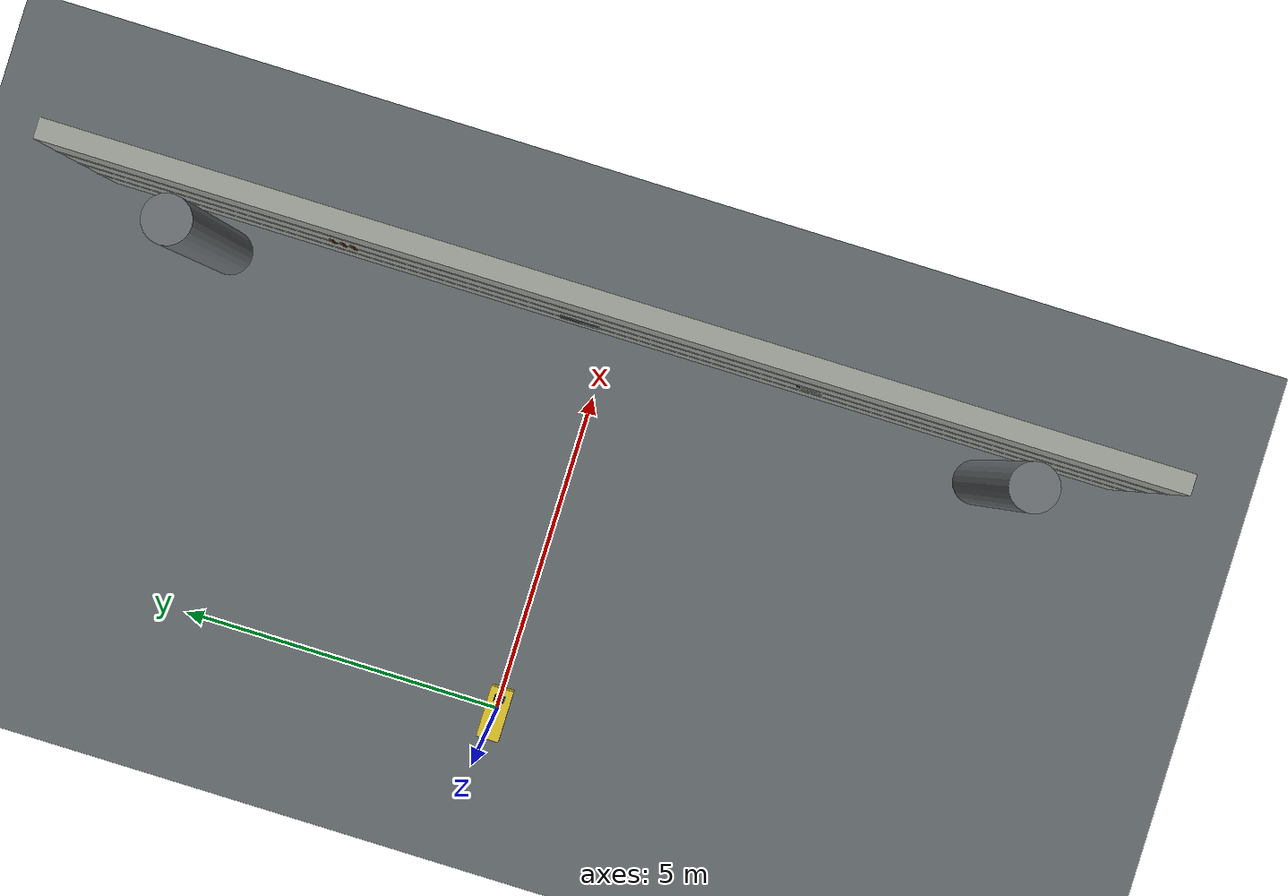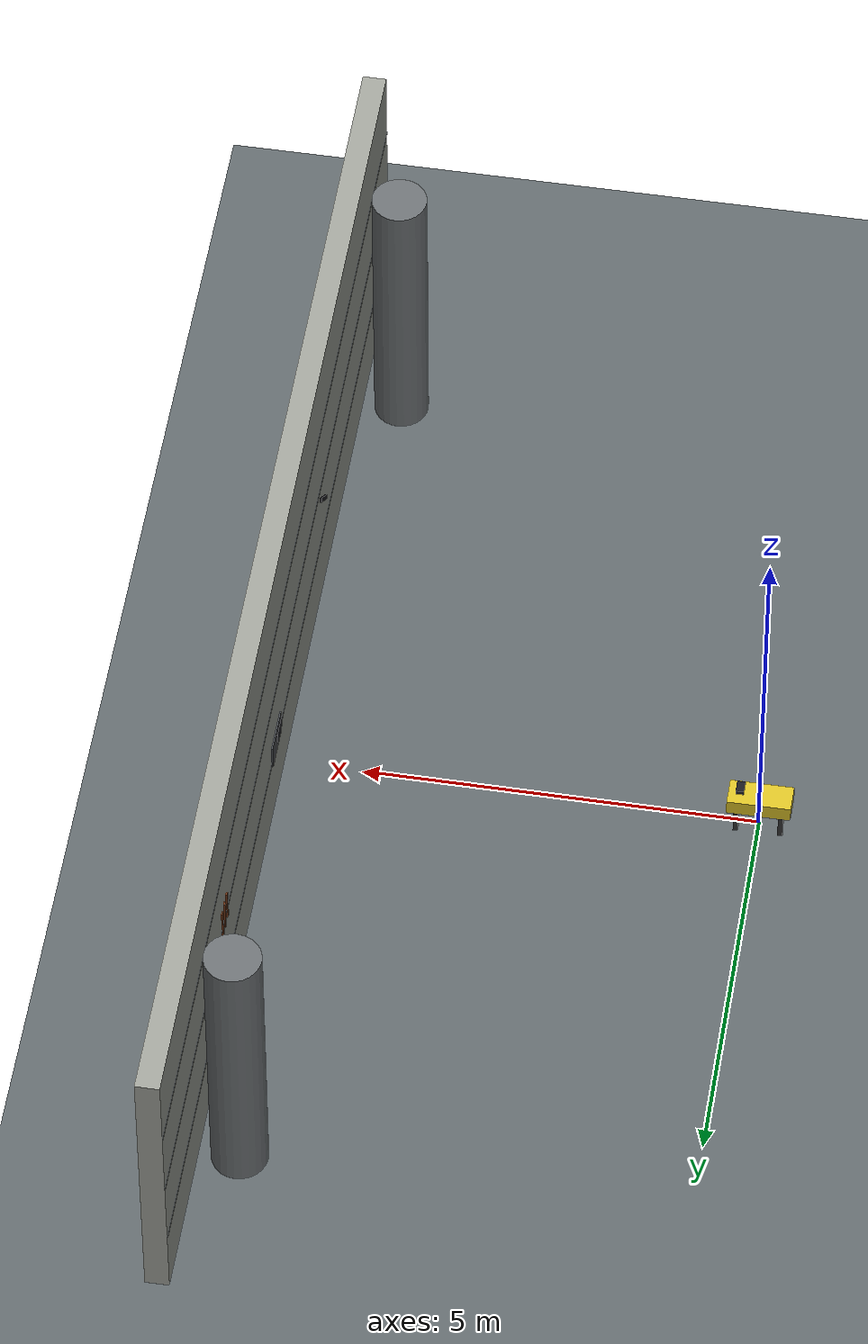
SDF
<?xml version="1.0"?>
<!--
  GENERATED FILE - do not edit by hand.
  Regenerate with: python3 scripts/generate_gazebo_world.py
  Geometry source: defect_detection/simulation/world_constants.py
-->
<sdf version="1.9">
  <world name="inspection_site">
    <physics name="default_physics" type="ignored">
      <max_step_size>0.004</max_step_size>
      <real_time_factor>1.0</real_time_factor>
    </physics>
    <plugin filename="gz-sim-physics-system"
            name="gz::sim::systems::Physics"/>
    <plugin filename="gz-sim-user-commands-system"
            name="gz::sim::systems::UserCommands"/>
    <plugin filename="gz-sim-scene-broadcaster-system"
            name="gz::sim::systems::SceneBroadcaster"/>
    <plugin filename="gz-sim-sensors-system"
            name="gz::sim::systems::Sensors">
      <render_engine>ogre2</render_engine>
    </plugin>

    <scene>
      <ambient>0.6 0.6 0.6 1</ambient>
      <background>0.65 0.75 0.85 1</background>
    </scene>

    <light type="directional" name="sun">
      <cast_shadows>true</cast_shadows>
      <pose>0 0 12 0 0 0</pose>
      <diffuse>0.9 0.9 0.85 1</diffuse>
      <specular>0.2 0.2 0.2 1</specular>
      <direction>-0.3 0.2 -0.9</direction>
    </light>

    <model name="ground">
      <static>true</static>
      <link name="ground_link">
        <collision name="ground_collision">
          <geometry>
            <plane><normal>0 0 1</normal><size>60 60</size></plane>
          </geometry>
        </collision>
        <visual name="ground_visual">
          <geometry>
            <plane><normal>0 0 1</normal><size>60 60</size></plane>
          </geometry>
          <material>
            <ambient>0.38 0.41 0.42 1</ambient>
            <diffuse>0.38 0.41 0.42 1</diffuse>
            <specular>0.05 0.05 0.05 1</specular>
          </material>
        </visual>
      </link>
    </model>

    <model name="inspection_wall">
      <static>true</static>
      <link name="wall_link">
        <collision name="wall_collision">
          <pose>6.15 0 2.0 0 0 0</pose>
          <geometry>
            <box>
              <size>0.3 16.0 4.0</size>
            </box>
          </geometry>
        </collision>
        <visual name="wall_visual">
          <pose>6.15 0 2.0 0 0 0</pose>
          <geometry>
            <box><size>0.3 16.0 4.0</size></box>
          </geometry>
          <material>
            <ambient>0.62 0.63 0.60 1</ambient>
            <diffuse>0.62 0.63 0.60 1</diffuse>
            <specular>0.05 0.05 0.05 1</specular>
          </material>
        </visual>
        <visual name="wall_joint_1">
          <pose>5.995 0 1.0 0 0 0</pose>
          <geometry>
            <box><size>0.01 16.0 0.03</size></box>
          </geometry>
          <material>
            <ambient>0.42 0.44 0.45 1</ambient>
            <diffuse>0.42 0.44 0.45 1</diffuse>
            <specular>0.05 0.05 0.05 1</specular>
          </material>
        </visual>
        <visual name="wall_joint_2">
          <pose>5.995 0 2.0 0 0 0</pose>
          <geometry>
            <box><size>0.01 16.0 0.03</size></box>
          </geometry>
          <material>
            <ambient>0.42 0.44 0.45 1</ambient>
            <diffuse>0.42 0.44 0.45 1</diffuse>
            <specular>0.05 0.05 0.05 1</specular>
          </material>
        </visual>
        <visual name="wall_joint_3">
          <pose>5.995 0 3.0 0 0 0</pose>
          <geometry>
            <box><size>0.01 16.0 0.03</size></box>
          </geometry>
          <material>
            <ambient>0.42 0.44 0.45 1</ambient>
            <diffuse>0.42 0.44 0.45 1</diffuse>
            <specular>0.05 0.05 0.05 1</specular>
          </material>
        </visual>
        <visual name="pillar_0">
          <pose>5.5 -6.0 2.0 0 0 0</pose>
          <geometry>
            <cylinder>
              <radius>0.35</radius>
              <length>4.0</length>
            </cylinder>
          </geometry>
          <material>
            <ambient>0.42 0.44 0.45 1</ambient>
            <diffuse>0.42 0.44 0.45 1</diffuse>
            <specular>0.05 0.05 0.05 1</specular>
          </material>
        </visual>
        <collision name="pillar_0_collision">
          <pose>5.5 -6.0 2.0 0 0 0</pose>
          <geometry>
            <cylinder>
              <radius>0.35</radius>
              <length>4.0</length>
            </cylinder>
          </geometry>
        </collision>
        <visual name="pillar_1">
          <pose>5.5 6.0 2.0 0 0 0</pose>
          <geometry>
            <cylinder>
              <radius>0.35</radius>
              <length>4.0</length>
            </cylinder>
          </geometry>
          <material>
            <ambient>0.42 0.44 0.45 1</ambient>
            <diffuse>0.42 0.44 0.45 1</diffuse>
            <specular>0.05 0.05 0.05 1</specular>
          </material>
        </visual>
        <collision name="pillar_1_collision">
          <pose>5.5 6.0 2.0 0 0 0</pose>
          <geometry>
            <cylinder>
              <radius>0.35</radius>
              <length>4.0</length>
            </cylinder>
          </geometry>
        </collision>
        <visual name="defect_crack">
          <pose>5.99 -3.0 1.6 0.785 0 0</pose>
          <geometry>
            <box><size>0.02 0.522 0.06</size></box>
          </geometry>
          <material>
            <ambient>0.12 0.12 0.13 1</ambient>
            <diffuse>0.12 0.12 0.13 1</diffuse>
            <specular>0.05 0.05 0.05 1</specular>
          </material>
        </visual>
        <visual name="defect_spalling">
          <pose>5.99 0.5 1.1 0 0 0</pose>
          <geometry>
            <box><size>0.02 0.600 0.360</size></box>
          </geometry>
          <material>
            <ambient>0.28 0.29 0.31 1</ambient>
            <diffuse>0.28 0.29 0.31 1</diffuse>
            <specular>0.05 0.05 0.05 1</specular>
          </material>
        </visual>
        <visual name="defect_spalling_core">
          <pose>5.985 0.350 1.1 0 0 0</pose>
          <geometry>
            <box><size>0.02 0.300 0.200</size></box>
          </geometry>
          <material>
            <ambient>0.12 0.12 0.13 1</ambient>
            <diffuse>0.12 0.12 0.13 1</diffuse>
            <specular>0.05 0.05 0.05 1</specular>
          </material>
        </visual>
        <visual name="defect_exposed_rebar_0">
          <pose>5.99 3.850 2.1 0 0 0</pose>
          <geometry>
            <box><size>0.02 0.05 0.450</size></box>
          </geometry>
          <material>
            <ambient>0.45 0.22 0.10 1</ambient>
            <diffuse>0.45 0.22 0.10 1</diffuse>
            <specular>0.05 0.05 0.05 1</specular>
          </material>
        </visual>
        <visual name="defect_exposed_rebar_1">
          <pose>5.99 4.000 2.1 0 0 0</pose>
          <geometry>
            <box><size>0.02 0.05 0.450</size></box>
          </geometry>
          <material>
            <ambient>0.45 0.22 0.10 1</ambient>
            <diffuse>0.45 0.22 0.10 1</diffuse>
            <specular>0.05 0.05 0.05 1</specular>
          </material>
        </visual>
        <visual name="defect_exposed_rebar_2">
          <pose>5.99 4.150 2.1 0 0 0</pose>
          <geometry>
            <box><size>0.02 0.05 0.450</size></box>
          </geometry>
          <material>
            <ambient>0.45 0.22 0.10 1</ambient>
            <diffuse>0.45 0.22 0.10 1</diffuse>
            <specular>0.05 0.05 0.05 1</specular>
          </material>
        </visual>
      </link>
    </model>

    <model name="spot_sim">
      <pose>0 0 0 0 0 0</pose>
      <link name="base_link">
        <gravity>false</gravity>
        <inertial>
          <mass>30.0</mass>
          <inertia>
            <ixx>1.0</ixx><iyy>1.0</iyy><izz>1.0</izz>
            <ixy>0</ixy><ixz>0</ixz><iyz>0</iyz>
          </inertia>
        </inertial>
        <visual name="body">
          <pose>0 0 0.45 0 0 0</pose>
          <geometry>
            <box><size>0.8 0.35 0.22</size></box>
          </geometry>
          <material>
            <ambient>0.85 0.75 0.15 1</ambient>
            <diffuse>0.85 0.75 0.15 1</diffuse>
            <specular>0.05 0.05 0.05 1</specular>
          </material>
        </visual>
        <visual name="leg_fl">
          <pose>0.28 0.14 0.18 0 0 0</pose>
          <geometry>
            <box><size>0.06 0.06 0.36</size></box>
          </geometry>
          <material>
            <ambient>0.2 0.2 0.2 1</ambient>
            <diffuse>0.2 0.2 0.2 1</diffuse>
            <specular>0.05 0.05 0.05 1</specular>
          </material>
        </visual>
        <visual name="leg_fr">
          <pose>0.28 -0.14 0.18 0 0 0</pose>
          <geometry>
            <box><size>0.06 0.06 0.36</size></box>
          </geometry>
          <material>
            <ambient>0.2 0.2 0.2 1</ambient>
            <diffuse>0.2 0.2 0.2 1</diffuse>
            <specular>0.05 0.05 0.05 1</specular>
          </material>
        </visual>
        <visual name="leg_rl">
          <pose>-0.28 0.14 0.18 0 0 0</pose>
          <geometry>
            <box><size>0.06 0.06 0.36</size></box>
          </geometry>
          <material>
            <ambient>0.2 0.2 0.2 1</ambient>
            <diffuse>0.2 0.2 0.2 1</diffuse>
            <specular>0.05 0.05 0.05 1</specular>
          </material>
        </visual>
        <visual name="leg_rr">
          <pose>-0.28 -0.14 0.18 0 0 0</pose>
          <geometry>
            <box><size>0.06 0.06 0.36</size></box>
          </geometry>
          <material>
            <ambient>0.2 0.2 0.2 1</ambient>
            <diffuse>0.2 0.2 0.2 1</diffuse>
            <specular>0.05 0.05 0.05 1</specular>
          </material>
        </visual>
        <visual name="camera_housing">
          <pose>0.25 0 0.65 0 0 0</pose>
          <geometry>
            <box><size>0.10 0.16 0.06</size></box>
          </geometry>
          <material>
            <ambient>0.1 0.1 0.12 1</ambient>
            <diffuse>0.1 0.1 0.12 1</diffuse>
            <specular>0.05 0.05 0.05 1</specular>
          </material>
        </visual>
        <sensor name="oak_rgbd" type="rgbd_camera">
          <pose>0.25 0 0.65 0 0 0</pose>
          <topic>oak/rgb</topic>
          <gz_frame_id>camera_optical_frame</gz_frame_id>
          <update_rate>10</update_rate>
          <camera>
            <horizontal_fov>1.25</horizontal_fov>
            <image>
              <width>640</width>
              <height>400</height>
            </image>
            <clip>
              <near>0.1</near>
              <far>25.0</far>
            </clip>
          </camera>
          <always_on>true</always_on>
          <visualize>true</visualize>
        </sensor>
      </link>
      <plugin filename="gz-sim-velocity-control-system"
              name="gz::sim::systems::VelocityControl">
        <topic>/model/spot_sim/cmd_vel</topic>
      </plugin>
      <plugin filename="gz-sim-odometry-publisher-system"
              name="gz::sim::systems::OdometryPublisher">
        <odom_frame>odom</odom_frame>
        <robot_base_frame>base_link</robot_base_frame>
        <odom_topic>/model/spot_sim/odometry</odom_topic>
        <tf_topic>/model/spot_sim/tf</tf_topic>
        <odom_publish_frequency>30</odom_publish_frequency>
      </plugin>
    </model>
  </world>
</sdf>
